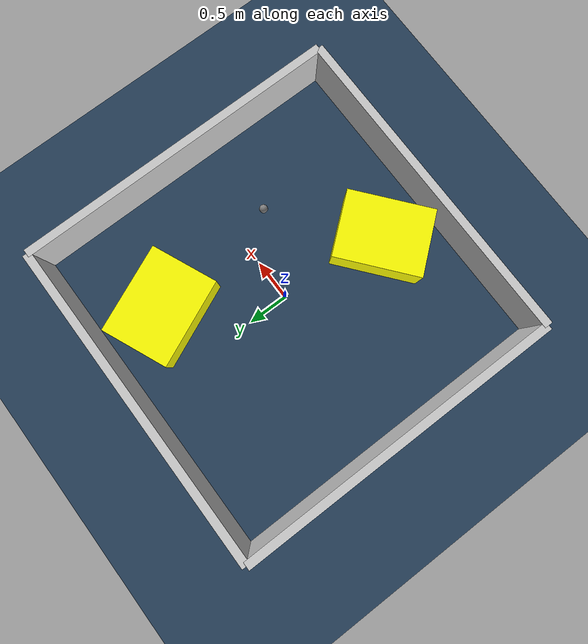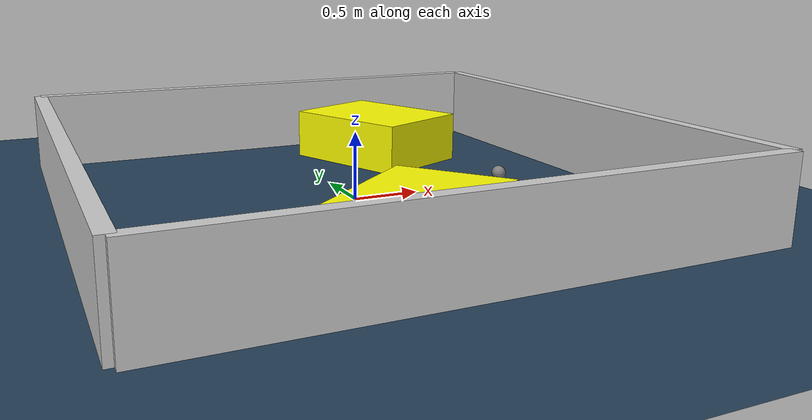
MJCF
<?xml version="1.0" ?>
<mujoco model="generated_environment">
  <option timestep="0.01" integrator="RK4" cone="elliptic"/>
  <default>
    <geom density="1"/>
  </default>
  <asset>
    <texture builtin="gradient" height="3072" rgb1="0.3 0.5 0.7" rgb2="0 0 0" type="skybox" width="512"/>
    <texture builtin="checker" height="300" mark="edge" markrgb="0.8 0.8 0.8" name="groundplane" rgb1="0.2 0.3 0.4" rgb2="0.1 0.2 0.3" type="2d" width="300"/>
    <material name="groundplane" reflectance="0.2" texrepeat="5 5" texture="groundplane" texuniform="true"/>
    <material name="robot" rgba="0.0 1.0 0.0 1"/>
  </asset>
  <worldbody>
    <light dir="0 0 -1" directional="true" pos="0 0 1.5"/>
    <geom condim="4" friction="1.0 0.005 0.001" material="groundplane" name="floor" size="0 0 0.05" type="plane"/>
    <body name="walls">
      <geom name="wall_1" condim="4" pos="-2.0 0.0 0.3" rgba="0.800000011920929 0.800000011920929 0.800000011920929 1.0" size="0.05 2.0 0.3" type="box"/>
      <geom name="wall_2" condim="4" pos="2.0 0.0 0.3" rgba="0.800000011920929 0.800000011920929 0.800000011920929 1.0" size="0.05 2.0 0.3" type="box"/>
      <geom name="wall_3" condim="4" pos="0.0 -2.0 0.3" rgba="0.800000011920929 0.800000011920929 0.800000011920929 1.0" size="2.0 0.05 0.3" type="box"/>
      <geom name="wall_4" condim="4" pos="0.0 2.0 0.3" rgba="0.800000011920929 0.800000011920929 0.800000011920929 1.0" size="2.0 0.05 0.3" type="box"/>
    </body>
    <body name="robot">
      <joint name="joint_x" type="slide" pos="0 0 0" axis="1 0 0"/>
      <joint name="joint_y" type="slide" pos="0 0 0" axis="0 1 0"/>
      <geom name="robot" type="sphere" pos="0.9590262992707834 -0.41112593440848433 0.2" size="0.05" mass="5." friction="1.0 0.005 0.0001" condim="4"/>
      <site name="sensor_ball"/>
    </body>
    <body name="obstacle_1_movable">
      <geom name="obstacle_1_movable" condim="4" pos="-0.1393081464500363 -1.3020507836160313 0.2" euler="0 0 219.38820169091576" friction="1.0 0.005 0.001" rgba="1 1 0 1" size="0.5225269505943526 0.40606208950211736 0.2" type="box" mass="0.1"/>
      <joint type="free"/>
    </body>
    <body name="obstacle_2_movable">
      <geom name="obstacle_2_movable" condim="4" pos="0.7178456939990217 1.1984816391184732 0.2" euler="0 0 203.54513375752288" friction="1.0 0.005 0.001" rgba="1 1 0 1" size="0.41363703746624236 0.5442093077976276 0.2" type="box" mass="0.1"/>
      <joint type="free"/>
    </body>
  </worldbody>
  <actuator>
    <motor name="actuator_x" joint="joint_x" gear="1" ctrlrange="-1 1"/>
    <motor name="actuator_y" joint="joint_y" gear="1" ctrlrange="-1 1"/>
  </actuator>
</mujoco>
